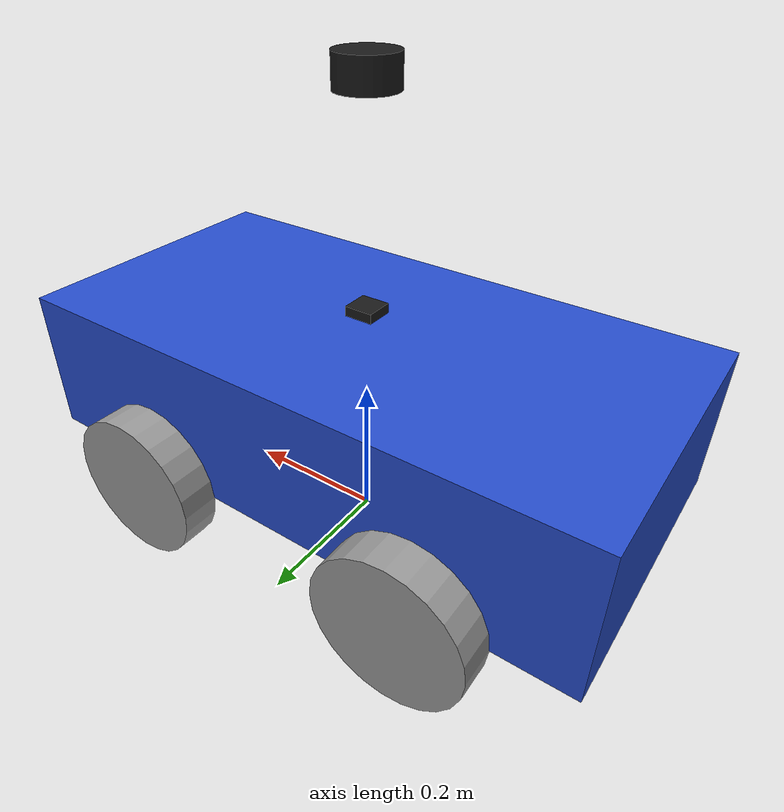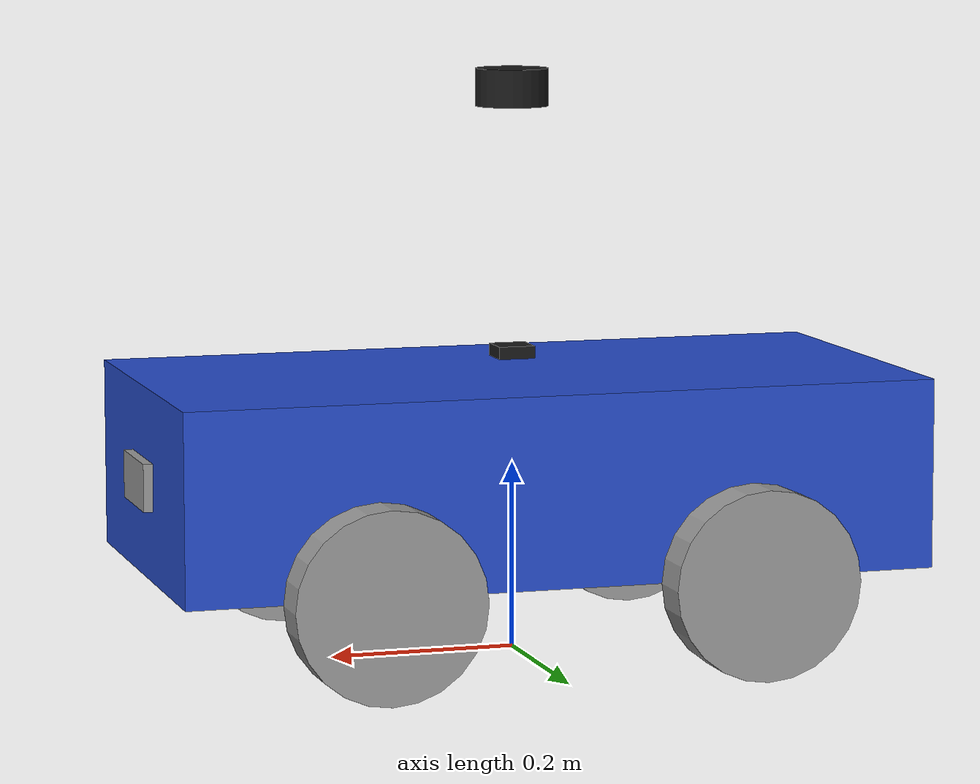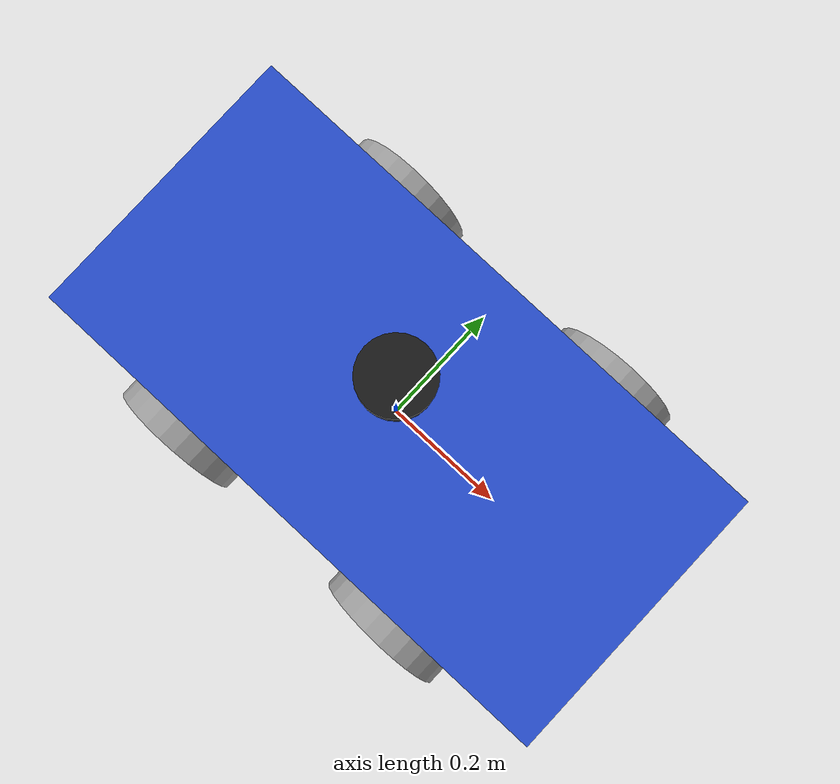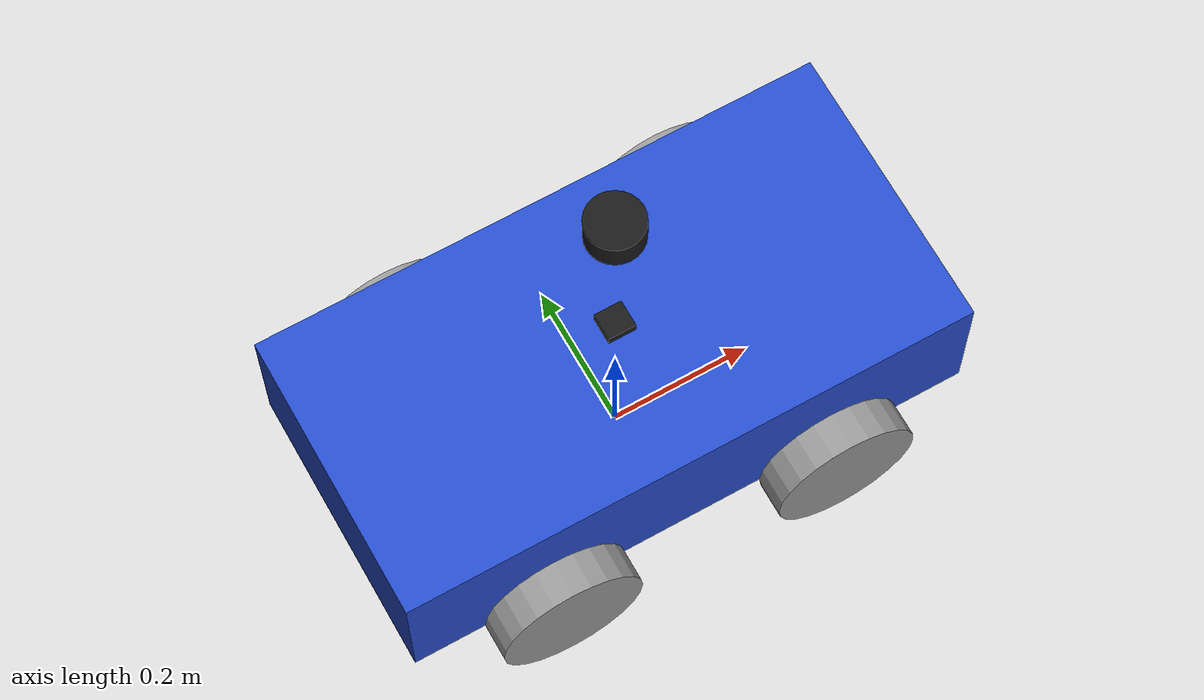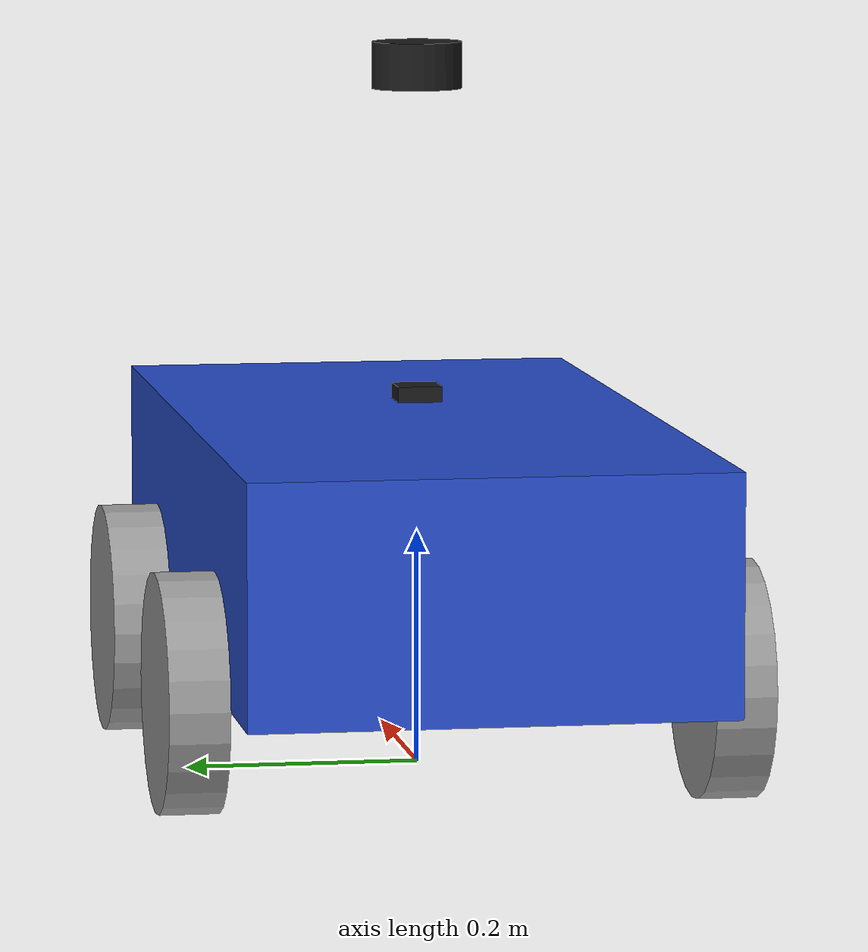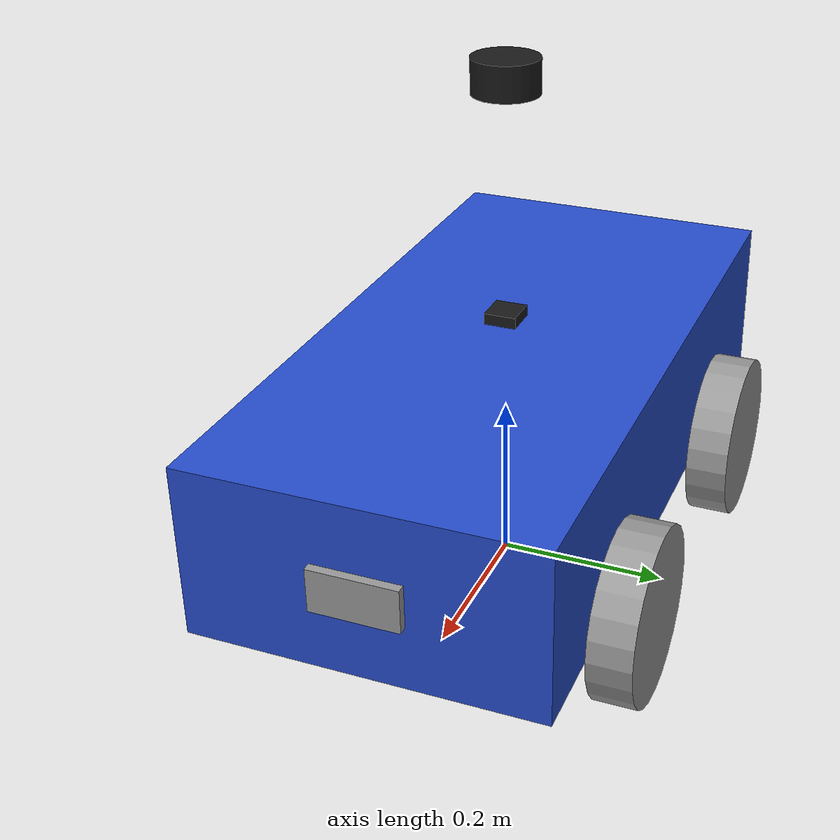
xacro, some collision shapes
<?xml version="1.0"?>
<robot name="my_robot" xmlns:xacro="http://www.ros.org/wiki/xacro">

    <xacro:include filename="common_properties.xacro" />
    <xacro:include filename="mobile_base.xacro" />
    <xacro:include filename="mobile_base_gazebo.xacro" />
    <xacro:include filename="camera.xacro" />
    <xacro:include filename="lidar.urdf.xacro" />
    <xacro:include filename="imu.urdf.xacro" />

</robot>

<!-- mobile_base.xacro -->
<robot xmlns:xacro="http://www.ros.org/wiki/xacro">

    <xacro:property name="base_length" value="0.8" />
    <xacro:property name="base_width" value="0.4" />
    <xacro:property name="base_height" value="0.2" />
    <xacro:property name="wheel_radius" value="0.1" />
    <xacro:property name="wheel_length" value="0.05" />

    <link name="base_footprint" />

    <link name="base_link">
        <visual>
            <geometry>
                <box size="${base_length} ${base_width} ${base_height}" />
            </geometry>
            <origin xyz="0 0 ${base_height / 2.0}" rpy="0 0 0" />
            <material name="blue" />
        </visual>
        <collision>
            <geometry>
                <box size="${base_length} ${base_width} ${base_height}" />
            </geometry>
            <origin xyz="0 0 ${base_height / 2.0}" rpy="0 0 0" />
        </collision>
        <xacro:box_inertia m="5.0" x="${base_length}" y="${base_width}" z="${base_height}"
                           o_xyz="0 0 ${base_height / 2.0}" o_rpy="0 0 0" />
    </link>

    <xacro:macro name="wheel_link" params="prefix">
        <link name="${prefix}_wheel_link">
            <visual>
                <geometry>
                    <cylinder radius="${wheel_radius}" length="${wheel_length}" />
                </geometry>
                <origin xyz="0 0 0" rpy="${pi / 2.0} 0 0" />
                <material name="grey" />
            </visual>
            <collision>
                <geometry>
                    <sphere radius="${wheel_radius}" />
                </geometry>
                <origin xyz="0 0 0" rpy="0 0 0" />
            </collision>
            <xacro:cylinder_inertia m="1.0" r="${wheel_radius}" l="${wheel_length}"
                                    o_xyz="0 0 0" o_rpy="${pi / 2.0} 0 0" />
        </link>
    </xacro:macro>

    <xacro:wheel_link prefix="front_right" />
    <xacro:wheel_link prefix="front_left" />
    <xacro:wheel_link prefix="rear_right" />
    <xacro:wheel_link prefix="rear_left" />

    <joint name="base_joint" type="fixed">
        <parent link="base_footprint" />
        <child link="base_link" />
        <origin xyz="0 0 ${wheel_radius}" rpy="0 0 0"/>
    </joint>

    <!-- Front steering links (pivot hubs) -->
    <link name="front_right_steering_link">
        <inertial>
            <mass value="0.1" />
            <origin xyz="0 0 0" rpy="0 0 0" />
            <inertia ixx="0.0001" ixy="0" ixz="0" iyy="0.0001" iyz="0" izz="0.0001" />
        </inertial>
    </link>

    <link name="front_left_steering_link">
        <inertial>
            <mass value="0.1" />
            <origin xyz="0 0 0" rpy="0 0 0" />
            <inertia ixx="0.0001" ixy="0" ixz="0" iyy="0.0001" iyz="0" izz="0.0001" />
        </inertial>
    </link>

    <!-- Rear steering links (pivot hubs) for 4WIS -->
    <link name="rear_right_steering_link">
        <inertial>
            <mass value="0.1" />
            <origin xyz="0 0 0" rpy="0 0 0" />
            <inertia ixx="0.0001" ixy="0" ixz="0" iyy="0.0001" iyz="0" izz="0.0001" />
        </inertial>
    </link>

    <link name="rear_left_steering_link">
        <inertial>
            <mass value="0.1" />
            <origin xyz="0 0 0" rpy="0 0 0" />
            <inertia ixx="0.0001" ixy="0" ixz="0" iyy="0.0001" iyz="0" izz="0.0001" />
        </inertial>
    </link>

    <!-- Front steering joints revolute around Z controlled by position -->
    <joint name="base_front_right_steering_joint" type="revolute">
        <parent link="base_link" />
        <child link="front_right_steering_link" />
        <origin xyz="${base_length / 4.0} ${-(base_width + wheel_length) / 2.0} 0" rpy="0 0 0" />
        <axis xyz="0 0 1" />
        <limit lower="-1.5708" upper="1.5708" effort="10" velocity="1.0" />
    </joint>

    <joint name="base_front_left_steering_joint" type="revolute">
        <parent link="base_link" />
        <child link="front_left_steering_link" />
        <origin xyz="${base_length / 4.0} ${(base_width + wheel_length) / 2.0} 0" rpy="0 0 0" />
        <axis xyz="0 0 1" />
        <limit lower="-1.5708" upper="1.5708" effort="10" velocity="1.0" />
    </joint>

    <!-- Rear steering joints revolute around Z controlled by position -->
    <joint name="base_rear_right_steering_joint" type="revolute">
        <parent link="base_link" />
        <child link="rear_right_steering_link" />
        <origin xyz="${-base_length / 4.0} ${-(base_width + wheel_length) / 2.0} 0" rpy="0 0 0" />
        <axis xyz="0 0 1" />
        <limit lower="-1.5708" upper="1.5708" effort="10" velocity="1.0" />
    </joint>

    <joint name="base_rear_left_steering_joint" type="revolute">
        <parent link="base_link" />
        <child link="rear_left_steering_link" />
        <origin xyz="${-base_length / 4.0} ${(base_width + wheel_length) / 2.0} 0" rpy="0 0 0" />
        <axis xyz="0 0 1" />
        <limit lower="-1.5708" upper="1.5708" effort="10" velocity="1.0" />
    </joint>

    <!-- Front wheel rolling joints child of steering link continuous around Y -->
    <joint name="base_front_right_wheel_joint" type="continuous">
        <parent link="front_right_steering_link" />
        <child link="front_right_wheel_link" />
        <origin xyz="0 0 0" rpy="0 0 0" />
        <axis xyz="0 1 0" />
    </joint>

    <joint name="base_front_left_wheel_joint" type="continuous">
        <parent link="front_left_steering_link" />
        <child link="front_left_wheel_link" />
        <origin xyz="0 0 0" rpy="0 0 0" />
        <axis xyz="0 1 0" />
    </joint>

    <!-- Rear wheel rolling joints child of steering link continuous around Y -->
    <joint name="base_rear_right_wheel_joint" type="continuous">
        <parent link="rear_right_steering_link" />
        <child link="rear_right_wheel_link" />
        <origin xyz="0 0 0" rpy="0 0 0" />
        <axis xyz="0 1 0" />
    </joint>

    <joint name="base_rear_left_wheel_joint" type="continuous">
        <parent link="rear_left_steering_link" />
        <child link="rear_left_wheel_link" />
        <origin xyz="0 0 0" rpy="0 0 0" />
        <axis xyz="0 1 0" />
    </joint>

    <!-- Front wheels grip the ground for rolling -->
    <gazebo reference="front_left_wheel_link">
        <mu1>5.0</mu1>
        <mu2>5.0</mu2>
        <kp>1e6</kp>
        <kd>10.0</kd>
        <minDepth>0.001</minDepth>
        <fdir1>1 0 0</fdir1>
    </gazebo>

    <gazebo reference="front_right_wheel_link">
        <mu1>5.0</mu1>
        <mu2>5.0</mu2>
        <kp>1e6</kp>
        <kd>10.0</kd>
        <minDepth>0.001</minDepth>
        <fdir1>1 0 0</fdir1>
    </gazebo>

    <gazebo reference="rear_left_wheel_link">
        <mu1>5.0</mu1>
        <mu2>5.0</mu2>
        <kp>1e6</kp>
        <kd>10.0</kd>
        <minDepth>0.001</minDepth>
        <fdir1>1 0 0</fdir1>
    </gazebo>

    <gazebo reference="rear_right_wheel_link">
        <mu1>5.0</mu1>
        <mu2>5.0</mu2>
        <kp>1e6</kp>
        <kd>10.0</kd>
        <minDepth>0.001</minDepth>
        <fdir1>1 0 0</fdir1>
    </gazebo>

</robot>

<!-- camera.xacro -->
<robot xmlns:xacro="http://ros.org/wiki/xacro">

    <xacro:property name="camera_length" value="0.01" />
    <xacro:property name="camera_width" value="0.1" />
    <xacro:property name="camera_height" value="0.05" />
    <!-- Camera link -->
    <link name="camera_link">
        <visual>
            <geometry>
                <box size="${camera_length} ${camera_width} ${camera_height}" />
            </geometry>
            <material name="grey" />
        </visual>
        <collision>
            <geometry>
                <box size="${camera_length} ${camera_width} ${camera_height}" />
            </geometry>
        </collision>
        <xacro:box_inertia m="0.1" x="${camera_length}" y="${camera_width}" z="${camera_height}"
                           o_xyz="0 0 0" o_rpy="0 0 0" />
    </link>
....
    <!-- Joint to parent -->
    <joint name="camera_joint" type="fixed">
      <parent link="base_link" />

      <child link="camera_link" />
    <origin xyz="${(base_length + camera_length) / 2.0} 0 ${base_height / 2.0}" rpy="0 0 0" />

    </joint>

    <!-- Camera optical frame -->
    <joint name="camera_optical_joint" type="fixed">
      <parent link="camera_link" />
      <child link="camera_optical_frame" />
      <origin xyz="0 0 0" rpy="0.0 0.0 0.0" />
    </joint>

    <link name="camera_optical_frame">
      <inertial>
        <mass value="0.01" />
        <origin xyz="0 0 0" rpy="0 0 0" />
        <inertia ixx="1e-6" ixy="0" ixz="0" iyy="1e-6" iyz="0" izz="1e-6" />
      </inertial>
    </link>

    <!-- Fixed Gazebo sensor configuration -->
    <gazebo reference="camera_optical_frame">
      <sensor name="camera_camera" type="rgbd_camera">
        <gz_frame_id>camera_optical_frame</gz_frame_id>
        <camera name="camera_camera">
          <horizontal_fov>1.2043</horizontal_fov>
          <lens>
            <intrinsics>
              <fx>915.3003540039062</fx>
              <fy>914.0320434570312</fy>
              <cx>642.724365234375</cx>
              <cy>361.9780578613281</cy>
              <s>0</s>
            </intrinsics>
          </lens>
          <distortion>
            <k1>0.0</k1>
            <k2>0.0</k2>
            <k3>0.0</k3>
            <p1>0.0</p1>
            <p2>0.0</p2>
            <center>0.5 0.5</center>
          </distortion>
          <image>
            <width>1280</width>
            <height>720</height>
            <format>R8G8B8</format>
          </image>
          <clip>
            <near>0.1</near>
            <far>100</far>
          </clip>
          <depth_camera>
            <clip>
              <near>0.1</near>
              <far>100</far>
            </clip>
          </depth_camera>
          <noise>
            <type>gaussian</type>
            <mean>0.0</mean>
            <stddev>0.007</stddev>
          </noise>
        </camera>
        <always_on>1</always_on>
        <update_rate>5</update_rate>
        <visualize>0</visualize>
        <topic>camera</topic>
      </sensor>

    </gazebo>

</robot>

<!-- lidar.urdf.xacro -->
<robot xmlns:xacro="http://www.ros.org/wiki/xacro">

  <link name="my_robotlaser_frame">
    <visual>
      <origin xyz="0 0 0" rpy="-1.5707963267948966 0 0"/>
      <geometry>
        <mesh filename="file://$(find my_robot_description)/meshes/rplidar/rplidar_s2.stl" scale="0.001 0.001 0.001"/>
      </geometry>
      <material name="rplidar_black">
        <color rgba="0.1 0.1 0.1 1"/>
      </material>
    </visual>

    <collision>
      <origin xyz="0 0 0" rpy="0 0 0"/>
      <geometry>
        <cylinder radius="0.0385" length="0.0398"/>
      </geometry>
    </collision>

    <inertial>
      <mass value="0.185"/>
      <origin xyz="0 0 0" rpy="0 0 0"/>
      <inertia
        ixx="0.0003976213541666667"
        ixy="0.0"
        ixz="0.0"
        iyy="0.0003976213541666667"
        iyz="0.0"
        izz="0.0001403625"/>
    </inertial>
  </link>

  <joint name="my_robotlaser_frame_joint" type="fixed">
    <parent link="base_link"/>
    <child link="my_robotlaser_frame" />
    <origin xyz="0 0 0.50" rpy="3.14 0 0"/>
  </joint>

<gazebo reference="my_robotlaser_frame">
      <sensor name="velodyne-VLP16" type="gpu_lidar">
          <topic>velodyne_points</topic>
          <update_rate>10</update_rate>
          <gz_frame_id>my_robotlaser_frame</gz_frame_id>
          <lidar>
              <scan>
                  <horizontal>
                      <samples>1000</samples>
                      <resolution>1</resolution>
                      <min_angle>-0</min_angle>
                      <max_angle>6.28</max_angle>
                  </horizontal>
                  <vertical>
                      <samples>120</samples>
                      <resolution>1</resolution>
                      <min_angle>-0.837</min_angle>
                      <max_angle>0.837</max_angle>
                  </vertical>
              </scan>
              <range>
                  <min>0.1</min>
                  <max>100.0</max>
                  <resolution>0.001</resolution>
              </range>
              <noise>
                  <type>gaussian</type>
                  <mean>0.0</mean>
                  <stddev>0.008</stddev>
              </noise>
              <frame_id>velodyne</frame_id>
          </lidar>
          <visualize>true</visualize>

          <always_on>1</always_on>
      </sensor>
  </gazebo>

</robot>

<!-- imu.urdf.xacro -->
<robot xmlns:xacro="http://www.ros.org/wiki/xacro">

  <!-- IMU physical properties -->
  <link name="imu_link">
    <visual>
      <origin xyz="0 0 0" rpy="0 0 0"/>
      <geometry>
        <box size="0.03899 0.03785 0.01338"/>
      </geometry>
      <material name="imu_black">
        <color rgba="0.1 0.1 0.1 1"/>
      </material>
    </visual>

    <inertial>
      <mass value="0.031" />
      <origin xyz="0 0 0" rpy="0 0 0"/>
      <inertia
        ixx="1.08e-05"
        ixy="0.0"
        ixz="0.0"
        iyy="1.53e-05"
        iyz="0.0"
        izz="2.43e-05" />
    </inertial>
  </link>

  <!-- Fixed joint to base_link -->
  <joint name="imu_joint" type="fixed">
    <parent link="base_link"/>
    <child link="imu_link" />
    <origin xyz="0 0 0.22" rpy="0 0 0"/>
  </joint>

  <!-- Gazebo sensor plugin -->
  <gazebo reference="imu_link">
    <material>
      <ambient>0.1 0.1 0.1 1</ambient>
      <diffuse>0.1 0.1 0.1 1</diffuse>
      <specular>0.1 0.1 0.1 1</specular>
    </material>
    <sensor name="imu_sensor" type="imu">
      <topic>imu</topic>
      <update_rate>15.0</update_rate>
      <always_on>true</always_on>
      <visualize>true</visualize> <!-- false tha pehle-->
      <gz_frame_id>imu_link</gz_frame_id>
    </sensor>
  </gazebo>

</robot>
